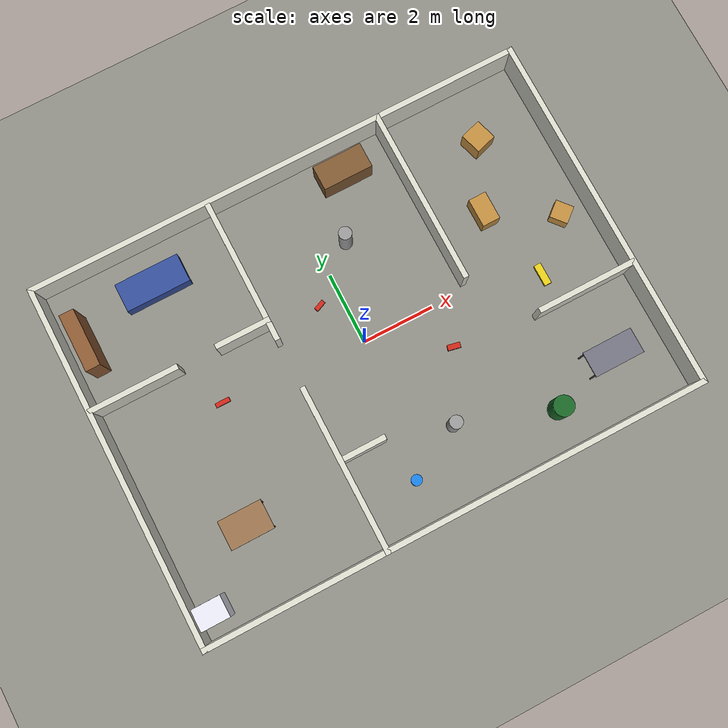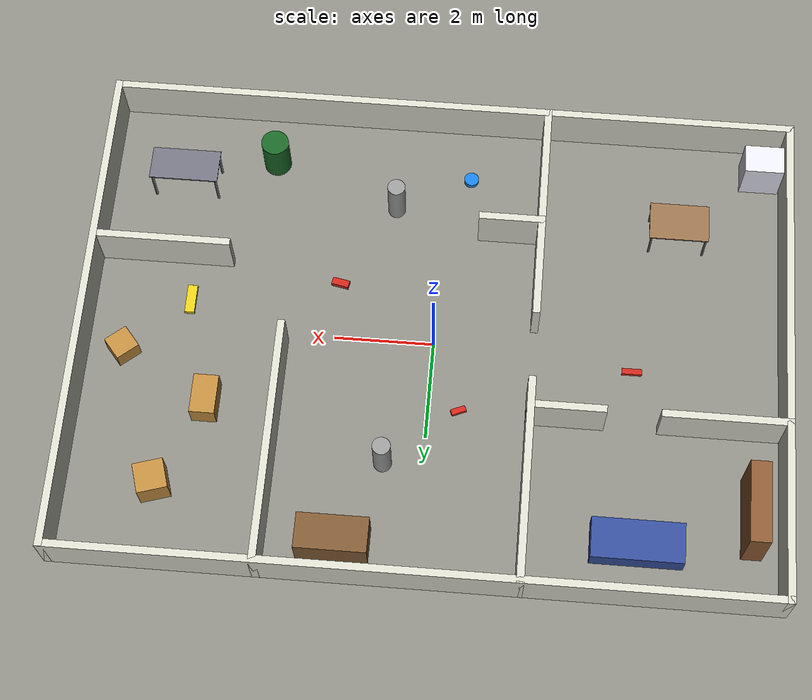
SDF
<?xml version="1.0" ?>
<sdf version="1.9">
  <world name="rover_world">
    <physics name="1ms" type="ignored">
      <max_step_size>0.001</max_step_size>
      <real_time_factor>1.0</real_time_factor>
    </physics>

    <plugin filename="gz-sim-physics-system" name="gz::sim::systems::Physics"/>
    <plugin filename="gz-sim-user-commands-system" name="gz::sim::systems::UserCommands"/>
    <plugin filename="gz-sim-scene-broadcaster-system" name="gz::sim::systems::SceneBroadcaster"/>
    <plugin filename="gz-sim-sensors-system" name="gz::sim::systems::Sensors">
      <render_engine>ogre2</render_engine>
    </plugin>
    <plugin filename="gz-sim-imu-system" name="gz::sim::systems::Imu"/>

    <gui fullscreen="0">
      <camera name="user_camera">
        <pose>-4 -9 9 0 0.75 1.0</pose>
      </camera>
    </gui>

    <scene>
      <ambient>0.6 0.6 0.6 1</ambient>
      <background>0.75 0.85 0.95 1</background>
      <shadows>false</shadows>
      <grid>false</grid>
    </scene>

    <light type="directional" name="sun">
      <cast_shadows>false</cast_shadows>
      <pose>0 0 10 0 0 0</pose>
      <diffuse>0.9 0.9 0.9 1</diffuse>
      <specular>0.2 0.2 0.2 1</specular>
      <direction>-0.4 0.2 -0.9</direction>
    </light>

    <model name="ground_plane">
      <static>true</static>
      <link name="link">
        <collision name="collision">
          <geometry><plane><normal>0 0 1</normal><size>40 40</size></plane></geometry>
          <surface><friction><ode><mu>1.0</mu><mu2>1.0</mu2></ode></friction></surface>
        </collision>
        <visual name="visual">
          <geometry><plane><normal>0 0 1</normal><size>40 40</size></plane></geometry>
          <material><ambient>0.55 0.55 0.52 1</ambient><diffuse>0.55 0.55 0.52 1</diffuse></material>
        </visual>
      </link>
    </model>

    <model name="walls">
      <static>true</static>
      <link name="outer_n">
        <pose>0.000 5.000 0.5 0 0 0</pose>
        <collision name="c"><geometry><box><size>14.150 0.150 1.0</size></box></geometry></collision>
        <visual name="v"><geometry><box><size>14.150 0.150 1.0</size></box></geometry>
          <material><ambient>0.85 0.85 0.8 1</ambient><diffuse>0.85 0.85 0.8 1</diffuse></material></visual>
      </link>
      <link name="outer_s">
        <pose>0.000 -5.000 0.5 0 0 0</pose>
        <collision name="c"><geometry><box><size>14.150 0.150 1.0</size></box></geometry></collision>
        <visual name="v"><geometry><box><size>14.150 0.150 1.0</size></box></geometry>
          <material><ambient>0.85 0.85 0.8 1</ambient><diffuse>0.85 0.85 0.8 1</diffuse></material></visual>
      </link>
      <link name="outer_w">
        <pose>-7.000 0.000 0.5 0 0 0</pose>
        <collision name="c"><geometry><box><size>0.150 10.150 1.0</size></box></geometry></collision>
        <visual name="v"><geometry><box><size>0.150 10.150 1.0</size></box></geometry>
          <material><ambient>0.85 0.85 0.8 1</ambient><diffuse>0.85 0.85 0.8 1</diffuse></material></visual>
      </link>
      <link name="outer_e">
        <pose>7.000 0.000 0.5 0 0 0</pose>
        <collision name="c"><geometry><box><size>0.150 10.150 1.0</size></box></geometry></collision>
        <visual name="v"><geometry><box><size>0.150 10.150 1.0</size></box></geometry>
          <material><ambient>0.85 0.85 0.8 1</ambient><diffuse>0.85 0.85 0.8 1</diffuse></material></visual>
      </link>
      <link name="w1_s">
        <pose>-2.000 -2.750 0.5 0 0 0</pose>
        <collision name="c"><geometry><box><size>0.150 4.650 1.0</size></box></geometry></collision>
        <visual name="v"><geometry><box><size>0.150 4.650 1.0</size></box></geometry>
          <material><ambient>0.85 0.85 0.8 1</ambient><diffuse>0.85 0.85 0.8 1</diffuse></material></visual>
      </link>
      <link name="w1_n">
        <pose>-2.000 3.000 0.5 0 0 0</pose>
        <collision name="c"><geometry><box><size>0.150 4.150 1.0</size></box></geometry></collision>
        <visual name="v"><geometry><box><size>0.150 4.150 1.0</size></box></geometry>
          <material><ambient>0.85 0.85 0.8 1</ambient><diffuse>0.85 0.85 0.8 1</diffuse></material></visual>
      </link>
      <link name="w2_w">
        <pose>-5.800 1.500 0.5 0 0 0</pose>
        <collision name="c"><geometry><box><size>2.550 0.150 1.0</size></box></geometry></collision>
        <visual name="v"><geometry><box><size>2.550 0.150 1.0</size></box></geometry>
          <material><ambient>0.85 0.85 0.8 1</ambient><diffuse>0.85 0.85 0.8 1</diffuse></material></visual>
      </link>
      <link name="w2_e">
        <pose>-2.700 1.500 0.5 0 0 0</pose>
        <collision name="c"><geometry><box><size>1.550 0.150 1.0</size></box></geometry></collision>
        <visual name="v"><geometry><box><size>1.550 0.150 1.0</size></box></geometry>
          <material><ambient>0.85 0.85 0.8 1</ambient><diffuse>0.85 0.85 0.8 1</diffuse></material></visual>
      </link>
      <link name="w3">
        <pose>3.000 2.600 0.5 0 0 0</pose>
        <collision name="c"><geometry><box><size>0.150 4.950 1.0</size></box></geometry></collision>
        <visual name="v"><geometry><box><size>0.150 4.950 1.0</size></box></geometry>
          <material><ambient>0.85 0.85 0.8 1</ambient><diffuse>0.85 0.85 0.8 1</diffuse></material></visual>
      </link>
      <link name="w4">
        <pose>5.650 -1.500 0.5 0 0 0</pose>
        <collision name="c"><geometry><box><size>2.850 0.150 1.0</size></box></geometry></collision>
        <visual name="v"><geometry><box><size>2.850 0.150 1.0</size></box></geometry>
          <material><ambient>0.85 0.85 0.8 1</ambient><diffuse>0.85 0.85 0.8 1</diffuse></material></visual>
      </link>
      <link name="w5_short">
        <pose>-1.400 -2.500 0.5 0 0 0</pose>
        <collision name="c"><geometry><box><size>1.350 0.150 1.0</size></box></geometry></collision>
        <visual name="v"><geometry><box><size>1.350 0.150 1.0</size></box></geometry>
          <material><ambient>0.85 0.85 0.8 1</ambient><diffuse>0.85 0.85 0.8 1</diffuse></material></visual>
      </link>
    </model>

    <!-- furniture & obstacles -->
    <model name="shelf_1">
      <static>true</static>
      <pose>-6.4 3.2 0.6 0 0 0</pose>
      <link name="link">
        <collision name="c"><geometry><box><size>0.4 1.6 1.2</size></box></geometry></collision>
        <visual name="v"><geometry><box><size>0.4 1.6 1.2</size></box></geometry>
          <material><ambient>0.55 0.35 0.2 1</ambient><diffuse>0.55 0.35 0.2 1</diffuse></material></visual>
      </link>
    </model>
    <model name="sofa">
      <static>true</static>
      <pose>-4.2 3.9 0.225 0 0 0</pose>
      <link name="link">
        <collision name="c"><geometry><box><size>1.8 0.8 0.45</size></box></geometry></collision>
        <visual name="v"><geometry><box><size>1.8 0.8 0.45</size></box></geometry>
          <material><ambient>0.2 0.3 0.6 1</ambient><diffuse>0.2 0.3 0.6 1</diffuse></material></visual>
      </link>
    </model>
    <model name="dining_table">
      <static>true</static>
      <pose>-4.8 -2.8 0 0 0 0</pose>
      <link name="link">
        <collision name="leg0_c"><pose>0.5499999999999999 0.35000000000000003 0.345 0 0 0</pose><geometry><box><size>0.04 0.04 0.69</size></box></geometry></collision>
        <visual name="leg0_v"><pose>0.5499999999999999 0.35000000000000003 0.345 0 0 0</pose><geometry><box><size>0.04 0.04 0.69</size></box></geometry>
          <material><ambient>0.3 0.3 0.3 1</ambient><diffuse>0.3 0.3 0.3 1</diffuse></material></visual>
        <collision name="leg1_c"><pose>0.5499999999999999 -0.35000000000000003 0.345 0 0 0</pose><geometry><box><size>0.04 0.04 0.69</size></box></geometry></collision>
        <visual name="leg1_v"><pose>0.5499999999999999 -0.35000000000000003 0.345 0 0 0</pose><geometry><box><size>0.04 0.04 0.69</size></box></geometry>
          <material><ambient>0.3 0.3 0.3 1</ambient><diffuse>0.3 0.3 0.3 1</diffuse></material></visual>
        <collision name="leg2_c"><pose>-0.5499999999999999 0.35000000000000003 0.345 0 0 0</pose><geometry><box><size>0.04 0.04 0.69</size></box></geometry></collision>
        <visual name="leg2_v"><pose>-0.5499999999999999 0.35000000000000003 0.345 0 0 0</pose><geometry><box><size>0.04 0.04 0.69</size></box></geometry>
          <material><ambient>0.3 0.3 0.3 1</ambient><diffuse>0.3 0.3 0.3 1</diffuse></material></visual>
        <collision name="leg3_c"><pose>-0.5499999999999999 -0.35000000000000003 0.345 0 0 0</pose><geometry><box><size>0.04 0.04 0.69</size></box></geometry></collision>
        <visual name="leg3_v"><pose>-0.5499999999999999 -0.35000000000000003 0.345 0 0 0</pose><geometry><box><size>0.04 0.04 0.69</size></box></geometry>
          <material><ambient>0.3 0.3 0.3 1</ambient><diffuse>0.3 0.3 0.3 1</diffuse></material></visual>
        <collision name="top_c"><pose>0 0 0.705 0 0 0</pose><geometry><box><size>1.2 0.8 0.03</size></box></geometry></collision>
        <visual name="top_v"><pose>0 0 0.705 0 0 0</pose><geometry><box><size>1.2 0.8 0.03</size></box></geometry>
          <material><ambient>0.6 0.45 0.3 1</ambient><diffuse>0.6 0.45 0.3 1</diffuse></material></visual>
      </link>
    </model>
    <model name="cabinet">
      <static>true</static>
      <pose>-6.5 -4.3 0.45 0 0 0</pose>
      <link name="link">
        <collision name="c"><geometry><box><size>0.8 0.6 0.9</size></box></geometry></collision>
        <visual name="v"><geometry><box><size>0.8 0.6 0.9</size></box></geometry>
          <material><ambient>0.9 0.9 0.95 1</ambient><diffuse>0.9 0.9 0.95 1</diffuse></material></visual>
      </link>
    </model>
    <model name="pillar_1">
      <static>true</static>
      <pose>0.8 2.6 0.5 0 0 0</pose>
      <link name="link">
        <collision name="c"><geometry><cylinder><radius>0.18</radius><length>1.0</length></cylinder></geometry></collision>
        <visual name="v"><geometry><cylinder><radius>0.18</radius><length>1.0</length></cylinder></geometry>
          <material><ambient>0.6 0.6 0.6 1</ambient><diffuse>0.6 0.6 0.6 1</diffuse></material></visual>
      </link>
    </model>
    <model name="pillar_2">
      <static>true</static>
      <pose>1.0 -3.0 0.5 0 0 0</pose>
      <link name="link">
        <collision name="c"><geometry><cylinder><radius>0.18</radius><length>1.0</length></cylinder></geometry></collision>
        <visual name="v"><geometry><cylinder><radius>0.18</radius><length>1.0</length></cylinder></geometry>
          <material><ambient>0.6 0.6 0.6 1</ambient><diffuse>0.6 0.6 0.6 1</diffuse></material></visual>
      </link>
    </model>
    <model name="crate_1">
      <static>true</static>
      <pose>5.2 3.4 0.3 0 0 0.3</pose>
      <link name="link">
        <collision name="c"><geometry><box><size>0.6 0.6 0.6</size></box></geometry></collision>
        <visual name="v"><geometry><box><size>0.6 0.6 0.6</size></box></geometry>
          <material><ambient>0.75 0.55 0.25 1</ambient><diffuse>0.75 0.55 0.25 1</diffuse></material></visual>
      </link>
    </model>
    <model name="crate_2">
      <static>true</static>
      <pose>4.4 1.6 0.25 0 0 0.0</pose>
      <link name="link">
        <collision name="c"><geometry><box><size>0.5 0.8 0.5</size></box></geometry></collision>
        <visual name="v"><geometry><box><size>0.5 0.8 0.5</size></box></geometry>
          <material><ambient>0.75 0.55 0.25 1</ambient><diffuse>0.75 0.55 0.25 1</diffuse></material></visual>
      </link>
    </model>
    <model name="crate_3">
      <static>true</static>
      <pose>6.2 0.6 0.2 0 0 0.7</pose>
      <link name="link">
        <collision name="c"><geometry><box><size>0.5 0.5 0.4</size></box></geometry></collision>
        <visual name="v"><geometry><box><size>0.5 0.5 0.4</size></box></geometry>
          <material><ambient>0.75 0.55 0.25 1</ambient><diffuse>0.75 0.55 0.25 1</diffuse></material></visual>
      </link>
    </model>
    <model name="work_bench">
      <static>true</static>
      <pose>5.4 -3.3 0 0 0 0</pose>
      <link name="link">
        <collision name="leg0_c"><pose>0.6499999999999999 0.3 0.385 0 0 0</pose><geometry><box><size>0.04 0.04 0.77</size></box></geometry></collision>
        <visual name="leg0_v"><pose>0.6499999999999999 0.3 0.385 0 0 0</pose><geometry><box><size>0.04 0.04 0.77</size></box></geometry>
          <material><ambient>0.3 0.3 0.3 1</ambient><diffuse>0.3 0.3 0.3 1</diffuse></material></visual>
        <collision name="leg1_c"><pose>0.6499999999999999 -0.3 0.385 0 0 0</pose><geometry><box><size>0.04 0.04 0.77</size></box></geometry></collision>
        <visual name="leg1_v"><pose>0.6499999999999999 -0.3 0.385 0 0 0</pose><geometry><box><size>0.04 0.04 0.77</size></box></geometry>
          <material><ambient>0.3 0.3 0.3 1</ambient><diffuse>0.3 0.3 0.3 1</diffuse></material></visual>
        <collision name="leg2_c"><pose>-0.6499999999999999 0.3 0.385 0 0 0</pose><geometry><box><size>0.04 0.04 0.77</size></box></geometry></collision>
        <visual name="leg2_v"><pose>-0.6499999999999999 0.3 0.385 0 0 0</pose><geometry><box><size>0.04 0.04 0.77</size></box></geometry>
          <material><ambient>0.3 0.3 0.3 1</ambient><diffuse>0.3 0.3 0.3 1</diffuse></material></visual>
        <collision name="leg3_c"><pose>-0.6499999999999999 -0.3 0.385 0 0 0</pose><geometry><box><size>0.04 0.04 0.77</size></box></geometry></collision>
        <visual name="leg3_v"><pose>-0.6499999999999999 -0.3 0.385 0 0 0</pose><geometry><box><size>0.04 0.04 0.77</size></box></geometry>
          <material><ambient>0.3 0.3 0.3 1</ambient><diffuse>0.3 0.3 0.3 1</diffuse></material></visual>
        <collision name="top_c"><pose>0 0 0.785 0 0 0</pose><geometry><box><size>1.4 0.7 0.03</size></box></geometry></collision>
        <visual name="top_v"><pose>0 0 0.785 0 0 0</pose><geometry><box><size>1.4 0.7 0.03</size></box></geometry>
          <material><ambient>0.45 0.45 0.5 1</ambient><diffuse>0.45 0.45 0.5 1</diffuse></material></visual>
      </link>
    </model>
    <model name="barrel">
      <static>true</static>
      <pose>3.6 -3.9 0.45 0 0 0</pose>
      <link name="link">
        <collision name="c"><geometry><cylinder><radius>0.28</radius><length>0.9</length></cylinder></geometry></collision>
        <visual name="v"><geometry><cylinder><radius>0.28</radius><length>0.9</length></cylinder></geometry>
          <material><ambient>0.1 0.4 0.15 1</ambient><diffuse>0.1 0.4 0.15 1</diffuse></material></visual>
      </link>
    </model>
    <model name="desk">
      <static>true</static>
      <pose>1.6 4.3 0.375 0 0 0</pose>
      <link name="link">
        <collision name="c"><geometry><box><size>1.4 0.7 0.75</size></box></geometry></collision>
        <visual name="v"><geometry><box><size>1.4 0.7 0.75</size></box></geometry>
          <material><ambient>0.5 0.35 0.2 1</ambient><diffuse>0.5 0.35 0.2 1</diffuse></material></visual>
      </link>
    </model>
    <!-- LOW obstacles (8-10 cm): BELOW the lidar plane, only the depth camera sees them -->
    <model name="low_brick_1">
      <static>true</static>
      <pose>-0.6 1.4 0.04 0 0 0.4</pose>
      <link name="link">
        <collision name="c"><geometry><box><size>0.3 0.12 0.08</size></box></geometry></collision>
        <visual name="v"><geometry><box><size>0.3 0.12 0.08</size></box></geometry>
          <material><ambient>0.8 0.15 0.1 1</ambient><diffuse>0.8 0.15 0.1 1</diffuse></material></visual>
      </link>
    </model>
    <model name="low_brick_2">
      <static>true</static>
      <pose>2.0 -1.2 0.05 0 0 -0.2</pose>
      <link name="link">
        <collision name="c"><geometry><box><size>0.35 0.15 0.1</size></box></geometry></collision>
        <visual name="v"><geometry><box><size>0.35 0.15 0.1</size></box></geometry>
          <material><ambient>0.8 0.15 0.1 1</ambient><diffuse>0.8 0.15 0.1 1</diffuse></material></visual>
      </link>
    </model>
    <model name="low_brick_3">
      <static>true</static>
      <pose>-4.0 0.3 0.04 0 0 0.0</pose>
      <link name="link">
        <collision name="c"><geometry><box><size>0.4 0.12 0.08</size></box></geometry></collision>
        <visual name="v"><geometry><box><size>0.4 0.12 0.08</size></box></geometry>
          <material><ambient>0.8 0.15 0.1 1</ambient><diffuse>0.8 0.15 0.1 1</diffuse></material></visual>
      </link>
    </model>
    <model name="low_step">
      <static>true</static>
      <pose>5.0 -0.6 0.045 0 0 0.0</pose>
      <link name="link">
        <collision name="c"><geometry><box><size>0.2 0.6 0.09</size></box></geometry></collision>
        <visual name="v"><geometry><box><size>0.2 0.6 0.09</size></box></geometry>
          <material><ambient>0.9 0.8 0.1 1</ambient><diffuse>0.9 0.8 0.1 1</diffuse></material></visual>
      </link>
    </model>
    <model name="low_bin">
      <static>true</static>
      <pose>-0.5 -3.8 0.05 0 0 0</pose>
      <link name="link">
        <collision name="c"><geometry><cylinder><radius>0.15</radius><length>0.1</length></cylinder></geometry></collision>
        <visual name="v"><geometry><cylinder><radius>0.15</radius><length>0.1</length></cylinder></geometry>
          <material><ambient>0.1 0.5 0.9 1</ambient><diffuse>0.1 0.5 0.9 1</diffuse></material></visual>
      </link>
    </model>
  </world>
</sdf>
